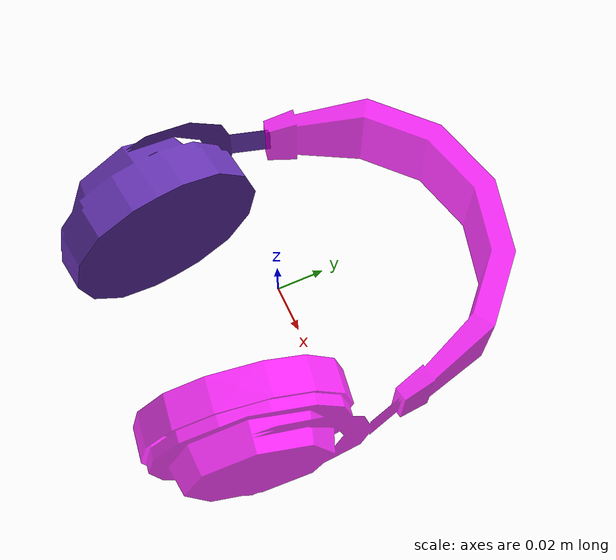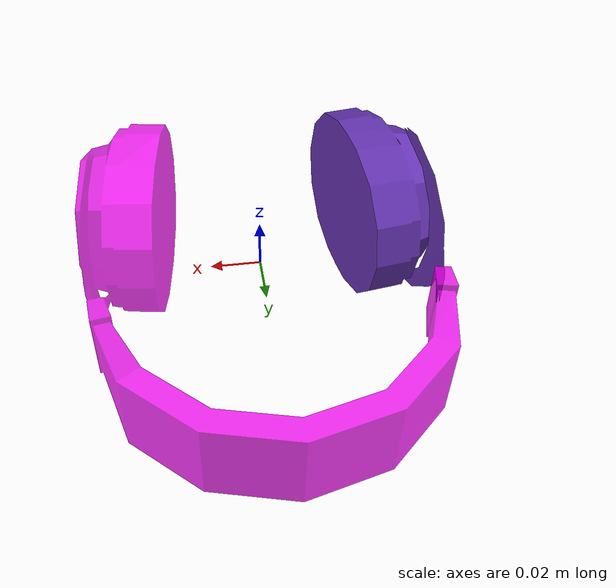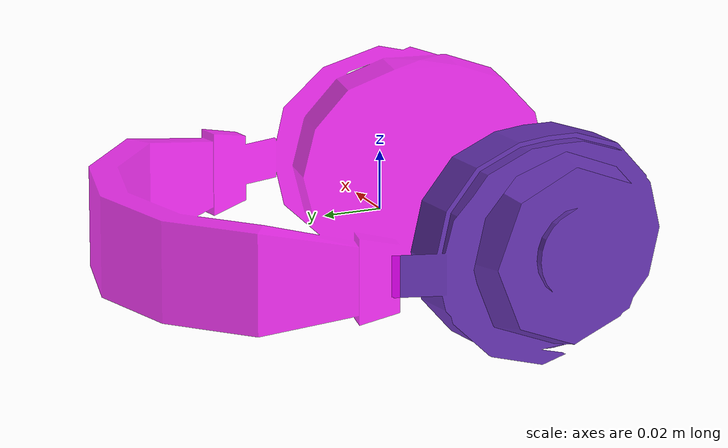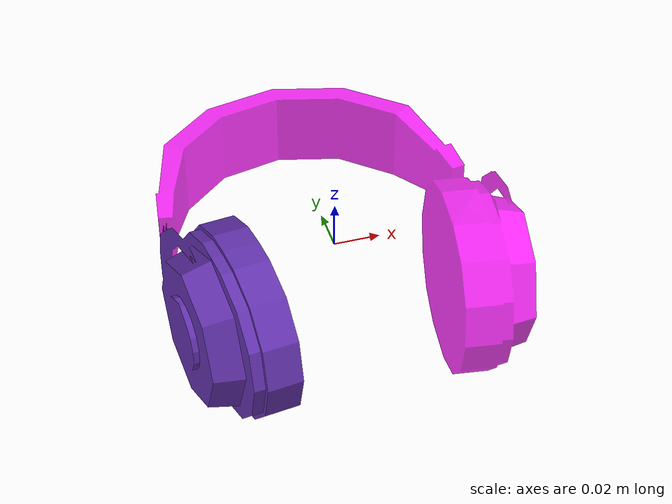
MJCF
<?xml version="1.0" encoding="utf-8"?>
<mujoco model="top_watertight_tiny">

  <asset>

    <mesh file="top_watertight_tiny.obj"/>

    <mesh file="top_watertight_tiny_collision_0.obj"/>

    <mesh file="top_watertight_tiny_collision_1.obj"/>

    <mesh file="top_watertight_tiny_collision_2.obj"/>

    <mesh file="top_watertight_tiny_collision_3.obj"/>

    <mesh file="top_watertight_tiny_collision_4.obj"/>

    <mesh file="top_watertight_tiny_collision_5.obj"/>

    <mesh file="top_watertight_tiny_collision_6.obj"/>

    <mesh file="top_watertight_tiny_collision_7.obj"/>

    <mesh file="top_watertight_tiny_collision_8.obj"/>

    <mesh file="top_watertight_tiny_collision_9.obj"/>

    <mesh file="top_watertight_tiny_collision_10.obj"/>

    <mesh file="top_watertight_tiny_collision_11.obj"/>

    <mesh file="top_watertight_tiny_collision_12.obj"/>

    <mesh file="top_watertight_tiny_collision_13.obj"/>

    <mesh file="top_watertight_tiny_collision_14.obj"/>

    <mesh file="top_watertight_tiny_collision_15.obj"/>

    <mesh file="top_watertight_tiny_collision_16.obj"/>

    <mesh file="top_watertight_tiny_collision_17.obj"/>

    <mesh file="top_watertight_tiny_collision_18.obj"/>

    <mesh file="top_watertight_tiny_collision_19.obj"/>

    <mesh file="top_watertight_tiny_collision_20.obj"/>

    <mesh file="bottom_watertight_tiny.obj"/>

    <mesh file="bottom_watertight_tiny_collision_0.obj"/>

    <mesh file="bottom_watertight_tiny_collision_1.obj"/>

    <mesh file="bottom_watertight_tiny_collision_2.obj"/>

    <mesh file="bottom_watertight_tiny_collision_3.obj"/>

    <mesh file="bottom_watertight_tiny_collision_4.obj"/>

    <mesh file="bottom_watertight_tiny_collision_5.obj"/>

    <mesh file="bottom_watertight_tiny_collision_6.obj"/>

    <mesh file="bottom_watertight_tiny_collision_7.obj"/>

    <mesh file="bottom_watertight_tiny_collision_8.obj"/>

    <mesh file="bottom_watertight_tiny_collision_9.obj"/>

    <mesh file="bottom_watertight_tiny_collision_10.obj"/>

    <mesh file="bottom_watertight_tiny_collision_11.obj"/>

  </asset>

  <worldbody>

    <body name="top_watertight_tiny">

      <freejoint/>

      <geom mesh="top_watertight_tiny" group="2" type="mesh" rgba="0.4 0.2 0.7 1" contype="0" conaffinity="0" solimp="0.90 0.95 0.001" solref="0.02 1.0" density="100" friction="0.95 0.4 0.3"/>

      <geom mesh="top_watertight_tiny_collision_0" rgba="0.6472199659099711 0.21594104477422726 0.13272635894675489 1" group="3" type="mesh" solimp="0.90 0.95 0.001" solref="0.02 1.0" density="100" friction="0.95 0.4 0.3"/>

      <geom mesh="top_watertight_tiny_collision_1" rgba="0.4721111614059268 0.7713620039980755 0.171303747795014 1" group="3" type="mesh" solimp="0.90 0.95 0.001" solref="0.02 1.0" density="100" friction="0.95 0.4 0.3"/>

      <geom mesh="top_watertight_tiny_collision_2" rgba="0.6453872702557512 0.8993211887698829 0.10354855451492828 1" group="3" type="mesh" solimp="0.90 0.95 0.001" solref="0.02 1.0" density="100" friction="0.95 0.4 0.3"/>

      <geom mesh="top_watertight_tiny_collision_3" rgba="0.03106612428053135 0.3574856925734168 0.34506762038387395 1" group="3" type="mesh" solimp="0.90 0.95 0.001" solref="0.02 1.0" density="100" friction="0.95 0.4 0.3"/>

      <geom mesh="top_watertight_tiny_collision_4" rgba="0.07813476309519696 0.3339754077388408 0.1818491599786315 1" group="3" type="mesh" solimp="0.90 0.95 0.001" solref="0.02 1.0" density="100" friction="0.95 0.4 0.3"/>

      <geom mesh="top_watertight_tiny_collision_5" rgba="0.6060038787991114 0.13034077573921155 0.8032305136492208 1" group="3" type="mesh" solimp="0.90 0.95 0.001" solref="0.02 1.0" density="100" friction="0.95 0.4 0.3"/>

      <geom mesh="top_watertight_tiny_collision_6" rgba="0.4466935614391676 0.2509032502398596 0.6940677178069495 1" group="3" type="mesh" solimp="0.90 0.95 0.001" solref="0.02 1.0" density="100" friction="0.95 0.4 0.3"/>

      <geom mesh="top_watertight_tiny_collision_7" rgba="0.3212624801470356 0.30975652175118973 0.2913222341378977 1" group="3" type="mesh" solimp="0.90 0.95 0.001" solref="0.02 1.0" density="100" friction="0.95 0.4 0.3"/>

      <geom mesh="top_watertight_tiny_collision_8" rgba="0.09654408629163558 0.3458632706120379 0.9763881048495731 1" group="3" type="mesh" solimp="0.90 0.95 0.001" solref="0.02 1.0" density="100" friction="0.95 0.4 0.3"/>

      <geom mesh="top_watertight_tiny_collision_9" rgba="0.9988857353644328 0.28990643460517385 0.5019580709109236 1" group="3" type="mesh" solimp="0.90 0.95 0.001" solref="0.02 1.0" density="100" friction="0.95 0.4 0.3"/>

      <geom mesh="top_watertight_tiny_collision_10" rgba="0.5574783443968924 0.12257257595354387 0.1681927449995192 1" group="3" type="mesh" solimp="0.90 0.95 0.001" solref="0.02 1.0" density="100" friction="0.95 0.4 0.3"/>

      <geom mesh="top_watertight_tiny_collision_11" rgba="0.8119382231900317 0.43615588982135534 0.4689406545034861 1" group="3" type="mesh" solimp="0.90 0.95 0.001" solref="0.02 1.0" density="100" friction="0.95 0.4 0.3"/>

      <geom mesh="top_watertight_tiny_collision_12" rgba="0.6293937697873891 0.4743622586655655 0.19609538184323516 1" group="3" type="mesh" solimp="0.90 0.95 0.001" solref="0.02 1.0" density="100" friction="0.95 0.4 0.3"/>

      <geom mesh="top_watertight_tiny_collision_13" rgba="0.8370425331602341 0.9749446302877631 0.5714764304965235 1" group="3" type="mesh" solimp="0.90 0.95 0.001" solref="0.02 1.0" density="100" friction="0.95 0.4 0.3"/>

      <geom mesh="top_watertight_tiny_collision_14" rgba="0.4490361411984197 0.1676869624002817 0.020790187989828124 1" group="3" type="mesh" solimp="0.90 0.95 0.001" solref="0.02 1.0" density="100" friction="0.95 0.4 0.3"/>

      <geom mesh="top_watertight_tiny_collision_15" rgba="0.47210180432130855 0.6521187054526851 0.5756333212179207 1" group="3" type="mesh" solimp="0.90 0.95 0.001" solref="0.02 1.0" density="100" friction="0.95 0.4 0.3"/>

      <geom mesh="top_watertight_tiny_collision_16" rgba="0.08243790254571415 0.6453063121446411 0.29702374015037203 1" group="3" type="mesh" solimp="0.90 0.95 0.001" solref="0.02 1.0" density="100" friction="0.95 0.4 0.3"/>

      <geom mesh="top_watertight_tiny_collision_17" rgba="0.09378659512811849 0.14095296853147354 0.08307346341564958 1" group="3" type="mesh" solimp="0.90 0.95 0.001" solref="0.02 1.0" density="100" friction="0.95 0.4 0.3"/>

      <geom mesh="top_watertight_tiny_collision_18" rgba="0.2505170687981384 0.14637787647780887 0.7637119901691699 1" group="3" type="mesh" solimp="0.90 0.95 0.001" solref="0.02 1.0" density="100" friction="0.95 0.4 0.3"/>

      <geom mesh="top_watertight_tiny_collision_19" rgba="0.8966444910772808 0.1677420489128516 0.14953123595309703 1" group="3" type="mesh" solimp="0.90 0.95 0.001" solref="0.02 1.0" density="100" friction="0.95 0.4 0.3"/>

      <geom mesh="top_watertight_tiny_collision_20" rgba="0.4980319974288372 0.9297273273901621 0.9436532734198679 1" group="3" type="mesh" solimp="0.90 0.95 0.001" solref="0.02 1.0" density="100" friction="0.95 0.4 0.3"/>

      <body name="bottom_watertight_tiny">

        <geom mesh="bottom_watertight_tiny" group="2" type="mesh" rgba="1 0 1 0.8" contype="0" conaffinity="0" solimp="0.90 0.95 0.001" solref="0.02 1.0" density="100" friction="0.95 0.4 0.3"/>

        <geom mesh="bottom_watertight_tiny_collision_0" rgba="0.8546464633714858 0.0061500582101214896 0.5713395096226863 1" group="3" type="mesh" solimp="0.90 0.95 0.001" solref="0.02 1.0" density="100" friction="0.95 0.4 0.3"/>

        <geom mesh="bottom_watertight_tiny_collision_1" rgba="0.5359159320530609 0.0986323971118781 0.6637891483678666 1" group="3" type="mesh" solimp="0.90 0.95 0.001" solref="0.02 1.0" density="100" friction="0.95 0.4 0.3"/>

        <geom mesh="bottom_watertight_tiny_collision_2" rgba="0.21065351916622188 0.16017973779268702 0.1186543387812884 1" group="3" type="mesh" solimp="0.90 0.95 0.001" solref="0.02 1.0" density="100" friction="0.95 0.4 0.3"/>

        <geom mesh="bottom_watertight_tiny_collision_3" rgba="0.8976053544337351 0.6913968390853272 0.1827035960844262 1" group="3" type="mesh" solimp="0.90 0.95 0.001" solref="0.02 1.0" density="100" friction="0.95 0.4 0.3"/>

        <geom mesh="bottom_watertight_tiny_collision_4" rgba="0.8007882107433913 0.6131206880484931 0.5406722608625573 1" group="3" type="mesh" solimp="0.90 0.95 0.001" solref="0.02 1.0" density="100" friction="0.95 0.4 0.3"/>

        <geom mesh="bottom_watertight_tiny_collision_5" rgba="0.03376597248051605 0.48092796414935 0.514999189936913 1" group="3" type="mesh" solimp="0.90 0.95 0.001" solref="0.02 1.0" density="100" friction="0.95 0.4 0.3"/>

        <geom mesh="bottom_watertight_tiny_collision_6" rgba="0.16411054993816776 0.3303955250303676 0.46951666355894306 1" group="3" type="mesh" solimp="0.90 0.95 0.001" solref="0.02 1.0" density="100" friction="0.95 0.4 0.3"/>

        <geom mesh="bottom_watertight_tiny_collision_7" rgba="0.18204094686052819 0.5713629612385533 0.8427625071662003 1" group="3" type="mesh" solimp="0.90 0.95 0.001" solref="0.02 1.0" density="100" friction="0.95 0.4 0.3"/>

        <geom mesh="bottom_watertight_tiny_collision_8" rgba="0.6916742489287098 0.6933089588784244 0.5672159066864401 1" group="3" type="mesh" solimp="0.90 0.95 0.001" solref="0.02 1.0" density="100" friction="0.95 0.4 0.3"/>

        <geom mesh="bottom_watertight_tiny_collision_9" rgba="0.8903751706693189 0.3123659037085674 0.41812956201870877 1" group="3" type="mesh" solimp="0.90 0.95 0.001" solref="0.02 1.0" density="100" friction="0.95 0.4 0.3"/>

        <geom mesh="bottom_watertight_tiny_collision_10" rgba="0.7463078218168399 0.7766985693102625 0.7927881782200105 1" group="3" type="mesh" solimp="0.90 0.95 0.001" solref="0.02 1.0" density="100" friction="0.95 0.4 0.3"/>

        <geom mesh="bottom_watertight_tiny_collision_11" rgba="0.6241430685699978 0.426759276593101 0.9118931145839873 1" group="3" type="mesh" solimp="0.90 0.95 0.001" solref="0.02 1.0" density="100" friction="0.95 0.4 0.3"/>

        <site name="bottom_watertight_tiny_touch_site" pos="0 0 0" size="0.2" rgba="1 0 0 0." type="sphere"/>
      </body>

      <site name="top_watertight_tiny_touch_site" pos="0 0 0" size="0.2" rgba="1 0 0 0." type="sphere"/>
    </body>

  </worldbody>

  <sensor>
    <touch name="top_watertight_tiny_touch" site="top_watertight_tiny_touch_site"/>
    <touch name="bottom_watertight_tiny_touch" site="bottom_watertight_tiny_touch_site"/>
  </sensor>
</mujoco>
